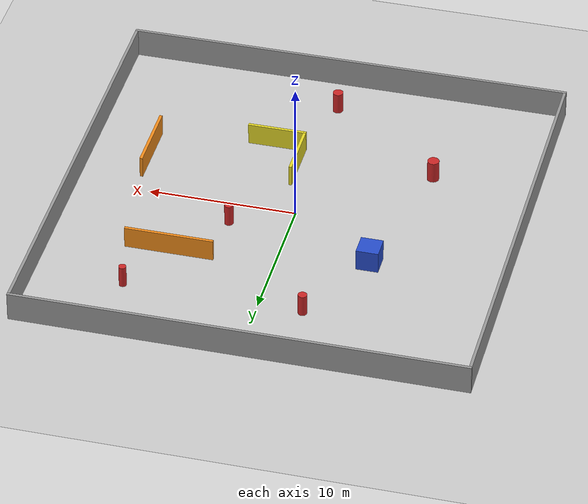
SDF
<?xml version="1.0" ?>
<sdf version="1.6">
  <world name="unk_world">

    <!-- ====== 物理引擎 ====== -->
    <physics type="ode">
      <max_step_size>0.001</max_step_size>
      <real_time_factor>1.0</real_time_factor>
      <real_time_update_rate>1000</real_time_update_rate>
    </physics>

    <!-- ====== 光照 ====== -->
    <include>
      <uri>model://sun</uri>
    </include>

    <!-- ====== 地面 ====== -->
    <model name="ground_plane">
      <static>true</static>
      <link name="link">
        <collision name="collision">
          <geometry>
            <plane>
              <normal>0 0 1</normal>
              <size>100 100</size>
            </plane>
          </geometry>
          <surface>
            <friction>
              <ode>
                <mu>100</mu>
                <mu2>50</mu2>
              </ode>
            </friction>
          </surface>
        </collision>
        <visual name="visual">
          <geometry>
            <plane>
              <normal>0 0 1</normal>
              <size>100 100</size>
            </plane>
          </geometry>
          <material>
            <script>
              <uri>file://media/materials/scripts/gazebo.material</uri>
              <name>Gazebo/Grey</name>
            </script>
          </material>
        </visual>
      </link>
    </model>

    <!-- ====== 边界墙（高 2m，厚 0.2m）====== -->

    <!-- 北墙 y=+15 -->
    <model name="wall_north">
      <static>true</static>
      <pose>0 15.1 1 0 0 0</pose>
      <link name="link">
        <collision name="collision">
          <geometry><box><size>30.4 0.2 2.0</size></box></geometry>
        </collision>
        <visual name="visual">
          <geometry><box><size>30.4 0.2 2.0</size></box></geometry>
          <material>
            <script>
              <uri>file://media/materials/scripts/gazebo.material</uri>
              <name>Gazebo/Grey</name>
            </script>
          </material>
        </visual>
      </link>
    </model>

    <!-- 南墙 y=-15 -->
    <model name="wall_south">
      <static>true</static>
      <pose>0 -15.1 1 0 0 0</pose>
      <link name="link">
        <collision name="collision">
          <geometry><box><size>30.4 0.2 2.0</size></box></geometry>
        </collision>
        <visual name="visual">
          <geometry><box><size>30.4 0.2 2.0</size></box></geometry>
          <material>
            <script>
              <uri>file://media/materials/scripts/gazebo.material</uri>
              <name>Gazebo/Grey</name>
            </script>
          </material>
        </visual>
      </link>
    </model>

    <!-- 东墙 x=+15 -->
    <model name="wall_east">
      <static>true</static>
      <pose>15.1 0 1 0 0 0</pose>
      <link name="link">
        <collision name="collision">
          <geometry><box><size>0.2 30.0 2.0</size></box></geometry>
        </collision>
        <visual name="visual">
          <geometry><box><size>0.2 30.0 2.0</size></box></geometry>
          <material>
            <script>
              <uri>file://media/materials/scripts/gazebo.material</uri>
              <name>Gazebo/Grey</name>
            </script>
          </material>
        </visual>
      </link>
    </model>

    <!-- 西墙 x=-15 -->
    <model name="wall_west">
      <static>true</static>
      <pose>-15.1 0 1 0 0 0</pose>
      <link name="link">
        <collision name="collision">
          <geometry><box><size>0.2 30.0 2.0</size></box></geometry>
        </collision>
        <visual name="visual">
          <geometry><box><size>0.2 30.0 2.0</size></box></geometry>
          <material>
            <script>
              <uri>file://media/materials/scripts/gazebo.material</uri>
              <name>Gazebo/Grey</name>
            </script>
          </material>
        </visual>
      </link>
    </model>

    <!-- ====== 障碍物 ====== -->

    <!--
      柱子1：(4, 2)  距出生点 ~4.5m
      第一个感知到的障碍，测试基础绕行
    -->
    <model name="pillar_1">
      <static>true</static>
      <pose>4 2 0.75 0 0 0</pose>
      <link name="link">
        <collision name="collision">
          <geometry><cylinder><radius>0.3</radius><length>1.5</length></cylinder></geometry>
        </collision>
        <visual name="visual">
          <geometry><cylinder><radius>0.3</radius><length>1.5</length></cylinder></geometry>
          <material>
            <script>
              <uri>file://media/materials/scripts/gazebo.material</uri>
              <name>Gazebo/Red</name>
            </script>
          </material>
        </visual>
      </link>
    </model>

    <!--
      横墙：(7, 6)  长 6m，东西走向
      测试横向 LOS 遮挡 + 绕行选路
    -->
    <model name="wall_horiz">
      <static>true</static>
      <pose>7 6 0.75 0 0 0</pose>
      <link name="link">
        <collision name="collision">
          <geometry><box><size>6.0 0.2 1.5</size></box></geometry>
        </collision>
        <visual name="visual">
          <geometry><box><size>6.0 0.2 1.5</size></box></geometry>
          <material>
            <script>
              <uri>file://media/materials/scripts/gazebo.material</uri>
              <name>Gazebo/Orange</name>
            </script>
          </material>
        </visual>
      </link>
    </model>

    <!--
      箱子：(-6, 4)  1.5×1.5×1.5m
      测试方形障碍绕行
    -->
    <model name="box_1">
      <static>true</static>
      <pose>-6 4 0.75 0 0 0</pose>
      <link name="link">
        <collision name="collision">
          <geometry><box><size>1.5 1.5 1.5</size></box></geometry>
        </collision>
        <visual name="visual">
          <geometry><box><size>1.5 1.5 1.5</size></box></geometry>
          <material>
            <script>
              <uri>file://media/materials/scripts/gazebo.material</uri>
              <name>Gazebo/Blue</name>
            </script>
          </material>
        </visual>
      </link>
    </model>

    <!--
      L 形障碍：(3, -7)
      东西臂 4m + 南北臂 4m（凸形外角，不形成凹坑）
      测试拐角感知与路径选择
    -->
    <model name="l_shape">
      <static>true</static>
      <pose>3 -7 0.75 0 0 0</pose>
      <link name="link">
        <!-- 东西向臂 -->
        <collision name="col_h">
          <pose>0 0 0 0 0 0</pose>
          <geometry><box><size>4.0 0.2 1.5</size></box></geometry>
        </collision>
        <visual name="vis_h">
          <pose>0 0 0 0 0 0</pose>
          <geometry><box><size>4.0 0.2 1.5</size></box></geometry>
          <material>
            <script>
              <uri>file://media/materials/scripts/gazebo.material</uri>
              <name>Gazebo/Yellow</name>
            </script>
          </material>
        </visual>
        <!-- 南北向臂 -->
        <collision name="col_v">
          <pose>-1.9 2.0 0 0 0 0</pose>
          <geometry><box><size>0.2 4.0 1.5</size></box></geometry>
        </collision>
        <visual name="vis_v">
          <pose>-1.9 2.0 0 0 0 0</pose>
          <geometry><box><size>0.2 4.0 1.5</size></box></geometry>
          <material>
            <script>
              <uri>file://media/materials/scripts/gazebo.material</uri>
              <name>Gazebo/Yellow</name>
            </script>
          </material>
        </visual>
      </link>
    </model>

    <!--
      柱子2：(-8, -6)  半径 0.4m
      西南区域障碍
    -->
    <model name="pillar_2">
      <static>true</static>
      <pose>-8 -6 0.75 0 0 0</pose>
      <link name="link">
        <collision name="collision">
          <geometry><cylinder><radius>0.4</radius><length>1.5</length></cylinder></geometry>
        </collision>
        <visual name="visual">
          <geometry><cylinder><radius>0.4</radius><length>1.5</length></cylinder></geometry>
          <material>
            <script>
              <uri>file://media/materials/scripts/gazebo.material</uri>
              <name>Gazebo/Red</name>
            </script>
          </material>
        </visual>
      </link>
    </model>

    <!--
      竖墙：(11, -4)  长 5m，南北走向
      测试纵向 LOS 遮挡
    -->
    <model name="wall_vert">
      <static>true</static>
      <pose>11 -4 0.75 0 0 0</pose>
      <link name="link">
        <collision name="collision">
          <geometry><box><size>0.2 5.0 1.5</size></box></geometry>
        </collision>
        <visual name="visual">
          <geometry><box><size>0.2 5.0 1.5</size></box></geometry>
          <material>
            <script>
              <uri>file://media/materials/scripts/gazebo.material</uri>
              <name>Gazebo/Orange</name>
            </script>
          </material>
        </visual>
      </link>
    </model>

    <!--
      柱子3：(-3, 10)  半径 0.3m
      北部区域障碍
    -->
    <model name="pillar_3">
      <static>true</static>
      <pose>-3 10 0.75 0 0 0</pose>
      <link name="link">
        <collision name="collision">
          <geometry><cylinder><radius>0.3</radius><length>1.5</length></cylinder></geometry>
        </collision>
        <visual name="visual">
          <geometry><cylinder><radius>0.3</radius><length>1.5</length></cylinder></geometry>
          <material>
            <script>
              <uri>file://media/materials/scripts/gazebo.material</uri>
              <name>Gazebo/Red</name>
            </script>
          </material>
        </visual>
      </link>
    </model>

    <!--
      柱子4：(9, 10)  半径 0.25m
      东北角障碍
    -->
    <model name="pillar_4">
      <static>true</static>
      <pose>9 10 0.75 0 0 0</pose>
      <link name="link">
        <collision name="collision">
          <geometry><cylinder><radius>0.25</radius><length>1.5</length></cylinder></geometry>
        </collision>
        <visual name="visual">
          <geometry><cylinder><radius>0.25</radius><length>1.5</length></cylinder></geometry>
          <material>
            <script>
              <uri>file://media/materials/scripts/gazebo.material</uri>
              <name>Gazebo/Red</name>
            </script>
          </material>
        </visual>
      </link>
    </model>

    <!--
      柱子5：(0, -12)  半径 0.35m
      南部障碍，测试远距离感知
    -->
    <model name="pillar_5">
      <static>true</static>
      <pose>0 -12 0.75 0 0 0</pose>
      <link name="link">
        <collision name="collision">
          <geometry><cylinder><radius>0.35</radius><length>1.5</length></cylinder></geometry>
        </collision>
        <visual name="visual">
          <geometry><cylinder><radius>0.35</radius><length>1.5</length></cylinder></geometry>
          <material>
            <script>
              <uri>file://media/materials/scripts/gazebo.material</uri>
              <name>Gazebo/Red</name>
            </script>
          </material>
        </visual>
      </link>
    </model>

  </world>
</sdf>
